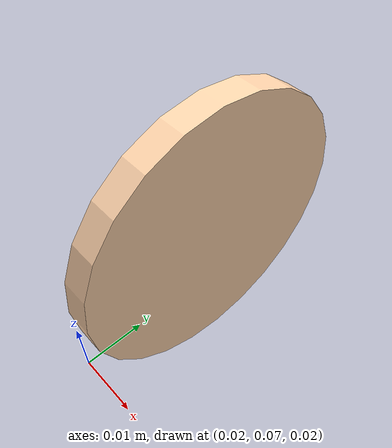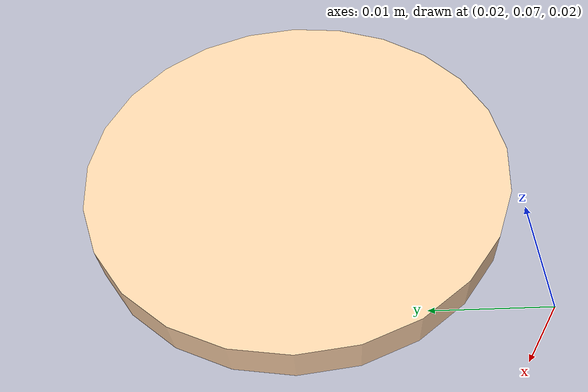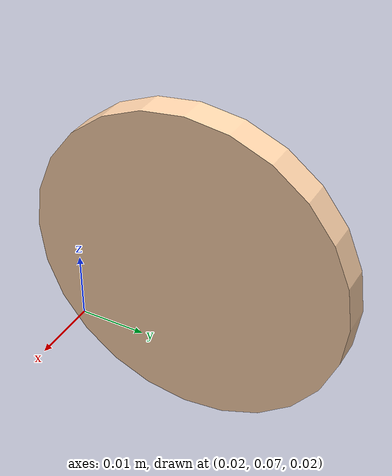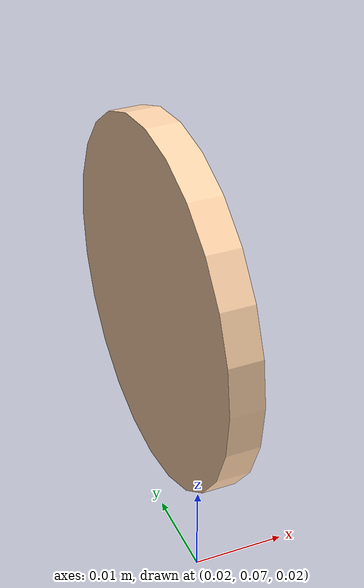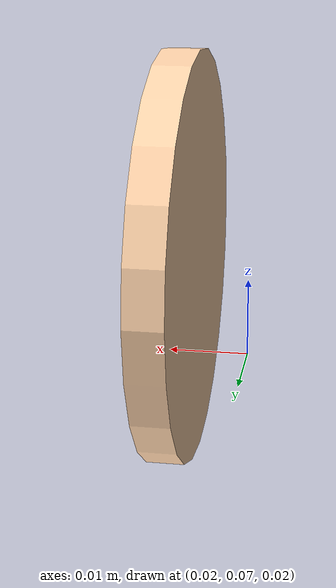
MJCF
<mujoco model="montessori_object_1">
    <compiler angle="radian" meshdir="." autolimits="true" inertiafromgeom="true"/>
    <default>
        <default class="montessori_object_1_collision">
            <geom rgba="1.0 0.83 0.67 1.0"/>
        </default>
    </default>
    <worldbody>
        <body name="montessori_object_1" pos="0.025 0.091 0.04" quat="0.707 0 0.707 0">
            <freejoint/>
            <inertial mass="0.004115183837711811" pos="0.0 0.0 0.0" quat="1.0 0.0 0.0 0.0" diaginertia="2.389725182183611e-07 2.389725182183611e-07 4.5374528667707636e-07"/>
            <geom name="MontessoriObject1" type="cylinder" size="0.022 0.002" class="montessori_object_1_collision"/>
        </body>
    </worldbody>
</mujoco>
